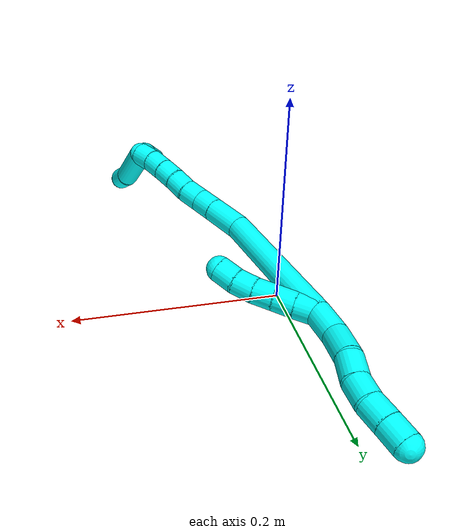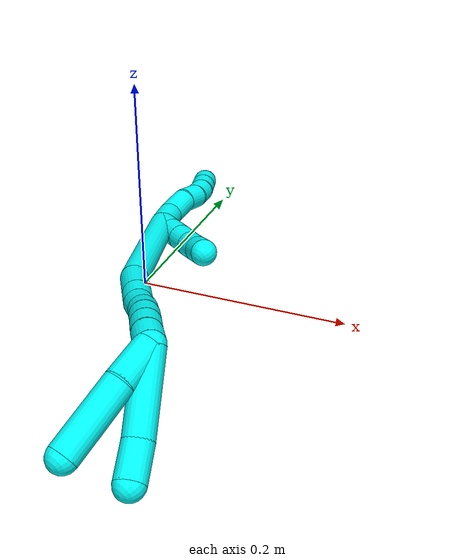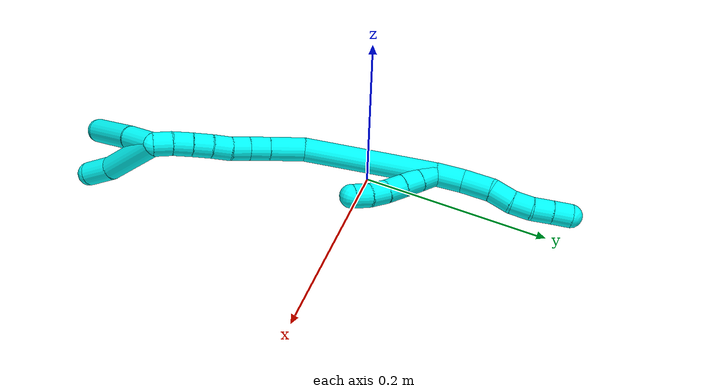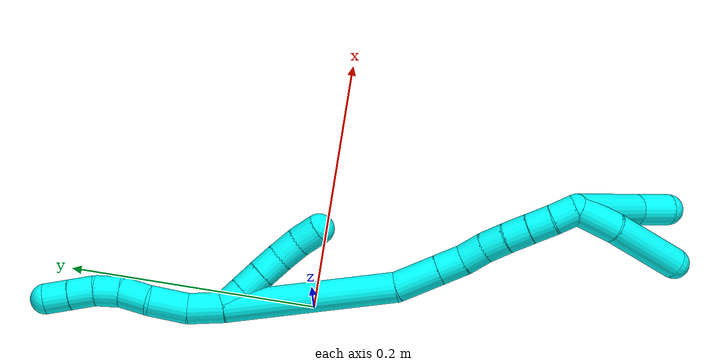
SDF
<sdf version="1.7">
 <world name="default">
  <model name="3">
   <static>0</static>
   <link name="3">
    <collision name="collision-cylinder-e_1_2_8">
     <pose>-0.00577 0.00658 -0.01234 -2.6517 -0.391288 1.34069</pose>
     <geometry><cylinder><radius>0.0125</radius><length>0.030256</length></cylinder></geometry>
     <surface>
      <friction><ode><mu>1.16</mu><mu2>1.16</mu2><slip1>0</slip1><slip2>0</slip2></ode></friction>
      <contact><ode><kp>1e+06</kp><kd>1</kd><max_vel>0</max_vel><min_depth>0.001</min_depth></ode></contact>
     </surface>
    </collision>
    <visual name="visual-cylinder-e_1_2_8">
     <pose>-0.00577 0.00658 -0.01234 -2.6517 -0.391288 1.34069</pose>
     <geometry><cylinder><radius>0.0125</radius><length>0.030256</length></cylinder></geometry>
     <material><ambient>0.003922 1 0.996078 1</ambient></material>
    </visual>
    <collision name="collision-cylinder-e_2_8_9">
     <pose>-0.014869 0.017003 -0.040044 -2.8965 -0.207248 1.40246</pose>
     <geometry><cylinder><radius>0.0125</radius><length>0.032368</length></cylinder></geometry>
     <surface>
      <friction><ode><mu>1.16</mu><mu2>1.16</mu2><slip1>0</slip1><slip2>0</slip2></ode></friction>
      <contact><ode><kp>1e+06</kp><kd>1</kd><max_vel>0</max_vel><min_depth>0.001</min_depth></ode></contact>
     </surface>
    </collision>
    <visual name="visual-cylinder-e_2_8_9">
     <pose>-0.014869 0.017003 -0.040044 -2.8965 -0.207248 1.40246</pose>
     <geometry><cylinder><radius>0.0125</radius><length>0.032368</length></cylinder></geometry>
     <material><ambient>0.003922 1 0.996078 1</ambient></material>
    </visual>
    <collision name="collision-cylinder-e_3_9_10">
     <pose>-0.023309 0.022201 -0.066171 -3.01639 -0.440227 2.59528</pose>
     <geometry><cylinder><radius>0.0125</radius><length>0.023981</length></cylinder></geometry>
     <surface>
      <friction><ode><mu>1.16</mu><mu2>1.16</mu2><slip1>0</slip1><slip2>0</slip2></ode></friction>
      <contact><ode><kp>1e+06</kp><kd>1</kd><max_vel>0</max_vel><min_depth>0.001</min_depth></ode></contact>
     </surface>
    </collision>
    <visual name="visual-cylinder-e_3_9_10">
     <pose>-0.023309 0.022201 -0.066171 -3.01639 -0.440227 2.59528</pose>
     <geometry><cylinder><radius>0.0125</radius><length>0.023981</length></cylinder></geometry>
     <material><ambient>0.003922 1 0.996078 1</ambient></material>
    </visual>
    <collision name="collision-cylinder-e_4_10_11">
     <pose>-0.032658 0.0273 -0.086019 -2.75066 -0.407276 1.61286</pose>
     <geometry><cylinder><radius>0.0125</radius><length>0.021406</length></cylinder></geometry>
     <surface>
      <friction><ode><mu>1.16</mu><mu2>1.16</mu2><slip1>0</slip1><slip2>0</slip2></ode></friction>
      <contact><ode><kp>1e+06</kp><kd>1</kd><max_vel>0</max_vel><min_depth>0.001</min_depth></ode></contact>
     </surface>
    </collision>
    <visual name="visual-cylinder-e_4_10_11">
     <pose>-0.032658 0.0273 -0.086019 -2.75066 -0.407276 1.61286</pose>
     <geometry><cylinder><radius>0.0125</radius><length>0.021406</length></cylinder></geometry>
     <material><ambient>0.003922 1 0.996078 1</ambient></material>
    </visual>
    <collision name="collision-cylinder-e_5_11_12">
     <pose>-0.041224 0.036733 -0.103018 -2.51837 -0.417831 1.16423</pose>
     <geometry><cylinder><radius>0.0125</radius><length>0.021325</length></cylinder></geometry>
     <surface>
      <friction><ode><mu>1.16</mu><mu2>1.16</mu2><slip1>0</slip1><slip2>0</slip2></ode></friction>
      <contact><ode><kp>1e+06</kp><kd>1</kd><max_vel>0</max_vel><min_depth>0.001</min_depth></ode></contact>
     </surface>
    </collision>
    <visual name="visual-cylinder-e_5_11_12">
     <pose>-0.041224 0.036733 -0.103018 -2.51837 -0.417831 1.16423</pose>
     <geometry><cylinder><radius>0.0125</radius><length>0.021325</length></cylinder></geometry>
     <material><ambient>0.003922 1 0.996078 1</ambient></material>
    </visual>
    <collision name="collision-cylinder-e_6_12_6">
     <pose>-0.049975 0.047883 -0.118503 -2.5166 -0.442514 1.21638</pose>
     <geometry><cylinder><radius>0.0125</radius><length>0.020664</length></cylinder></geometry>
     <surface>
      <friction><ode><mu>1.16</mu><mu2>1.16</mu2><slip1>0</slip1><slip2>0</slip2></ode></friction>
      <contact><ode><kp>1e+06</kp><kd>1</kd><max_vel>0</max_vel><min_depth>0.001</min_depth></ode></contact>
     </surface>
    </collision>
    <visual name="visual-cylinder-e_6_12_6">
     <pose>-0.049975 0.047883 -0.118503 -2.5166 -0.442514 1.21638</pose>
     <geometry><cylinder><radius>0.0125</radius><length>0.020664</length></cylinder></geometry>
     <material><ambient>0.003922 1 0.996078 1</ambient></material>
    </visual>
    <collision name="collision-cylinder-e_1_2_13">
     <pose>0.002401 -0.009141 0.003267 1.22753 0.242462 0.171246</pose>
     <geometry><cylinder><radius>0.0125</radius><length>0.02</length></cylinder></geometry>
     <surface>
      <friction><ode><mu>1.16</mu><mu2>1.16</mu2><slip1>0</slip1><slip2>0</slip2></ode></friction>
      <contact><ode><kp>1e+06</kp><kd>1</kd><max_vel>0</max_vel><min_depth>0.001</min_depth></ode></contact>
     </surface>
    </collision>
    <visual name="visual-cylinder-e_1_2_13">
     <pose>0.002401 -0.009141 0.003267 1.22753 0.242462 0.171246</pose>
     <geometry><cylinder><radius>0.0125</radius><length>0.02</length></cylinder></geometry>
     <material><ambient>0.003922 1 0.996078 1</ambient></material>
    </visual>
    <collision name="collision-cylinder-e_2_13_14">
     <pose>0.007507 -0.027338 0.009801 1.22456 0.273899 0.192975</pose>
     <geometry><cylinder><radius>0.0125</radius><length>0.02</length></cylinder></geometry>
     <surface>
      <friction><ode><mu>1.16</mu><mu2>1.16</mu2><slip1>0</slip1><slip2>0</slip2></ode></friction>
      <contact><ode><kp>1e+06</kp><kd>1</kd><max_vel>0</max_vel><min_depth>0.001</min_depth></ode></contact>
     </surface>
    </collision>
    <visual name="visual-cylinder-e_2_13_14">
     <pose>0.007507 -0.027338 0.009801 1.22456 0.273899 0.192975</pose>
     <geometry><cylinder><radius>0.0125</radius><length>0.02</length></cylinder></geometry>
     <material><ambient>0.003922 1 0.996078 1</ambient></material>
    </visual>
    <collision name="collision-cylinder-e_3_14_15">
     <pose>0.012783 -0.045424 0.01651 1.20666 0.260108 0.179756</pose>
     <geometry><cylinder><radius>0.0125</radius><length>0.02</length></cylinder></geometry>
     <surface>
      <friction><ode><mu>1.16</mu><mu2>1.16</mu2><slip1>0</slip1><slip2>0</slip2></ode></friction>
      <contact><ode><kp>1e+06</kp><kd>1</kd><max_vel>0</max_vel><min_depth>0.001</min_depth></ode></contact>
     </surface>
    </collision>
    <visual name="visual-cylinder-e_3_14_15">
     <pose>0.012783 -0.045424 0.01651 1.20666 0.260108 0.179756</pose>
     <geometry><cylinder><radius>0.0125</radius><length>0.02</length></cylinder></geometry>
     <material><ambient>0.003922 1 0.996078 1</ambient></material>
    </visual>
    <collision name="collision-cylinder-e_4_15_16">
     <pose>0.019046 -0.063056 0.023471 1.18242 0.377971 0.255402</pose>
     <geometry><cylinder><radius>0.0125</radius><length>0.02</length></cylinder></geometry>
     <surface>
      <friction><ode><mu>1.16</mu><mu2>1.16</mu2><slip1>0</slip1><slip2>0</slip2></ode></friction>
      <contact><ode><kp>1e+06</kp><kd>1</kd><max_vel>0</max_vel><min_depth>0.001</min_depth></ode></contact>
     </surface>
    </collision>
    <visual name="visual-cylinder-e_4_15_16">
     <pose>0.019046 -0.063056 0.023471 1.18242 0.377971 0.255402</pose>
     <geometry><cylinder><radius>0.0125</radius><length>0.02</length></cylinder></geometry>
     <material><ambient>0.003922 1 0.996078 1</ambient></material>
    </visual>
    <collision name="collision-cylinder-e_5_16_5">
     <pose>0.027634 -0.079342 0.03111 1.07866 0.511913 0.310735</pose>
     <geometry><cylinder><radius>0.0125</radius><length>0.02</length></cylinder></geometry>
     <surface>
      <friction><ode><mu>1.16</mu><mu2>1.16</mu2><slip1>0</slip1><slip2>0</slip2></ode></friction>
      <contact><ode><kp>1e+06</kp><kd>1</kd><max_vel>0</max_vel><min_depth>0.001</min_depth></ode></contact>
     </surface>
    </collision>
    <visual name="visual-cylinder-e_5_16_5">
     <pose>0.027634 -0.079342 0.03111 1.07866 0.511913 0.310735</pose>
     <geometry><cylinder><radius>0.0125</radius><length>0.02</length></cylinder></geometry>
     <material><ambient>0.003922 1 0.996078 1</ambient></material>
    </visual>
    <collision name="collision-cylinder-e_1_2_17">
     <pose>0.026486 -0.035378 0.054637 0.57462 0.386453 0.115505</pose>
     <geometry><cylinder><radius>0.0125</radius><length>0.140545</length></cylinder></geometry>
     <surface>
      <friction><ode><mu>1.16</mu><mu2>1.16</mu2><slip1>0</slip1><slip2>0</slip2></ode></friction>
      <contact><ode><kp>1e+06</kp><kd>1</kd><max_vel>0</max_vel><min_depth>0.001</min_depth></ode></contact>
     </surface>
    </collision>
    <visual name="visual-cylinder-e_1_2_17">
     <pose>0.026486 -0.035378 0.054637 0.57462 0.386453 0.115505</pose>
     <geometry><cylinder><radius>0.0125</radius><length>0.140545</length></cylinder></geometry>
     <material><ambient>0.003922 1 0.996078 1</ambient></material>
    </visual>
    <collision name="collision-cylinder-e_2_17_18">
     <pose>0.060305 -0.083713 0.12031 0.865286 0.406796 0.189929</pose>
     <geometry><cylinder><radius>0.0125</radius><length>0.037067</length></cylinder></geometry>
     <surface>
      <friction><ode><mu>1.16</mu><mu2>1.16</mu2><slip1>0</slip1><slip2>0</slip2></ode></friction>
      <contact><ode><kp>1e+06</kp><kd>1</kd><max_vel>0</max_vel><min_depth>0.001</min_depth></ode></contact>
     </surface>
    </collision>
    <visual name="visual-cylinder-e_2_17_18">
     <pose>0.060305 -0.083713 0.12031 0.865286 0.406796 0.189929</pose>
     <geometry><cylinder><radius>0.0125</radius><length>0.037067</length></cylinder></geometry>
     <material><ambient>0.003922 1 0.996078 1</ambient></material>
    </visual>
    <collision name="collision-cylinder-e_3_18_19">
     <pose>0.071816 -0.104206 0.137763 0.865486 0.3994 0.186451</pose>
     <geometry><cylinder><radius>0.0125</radius><length>0.021484</length></cylinder></geometry>
     <surface>
      <friction><ode><mu>1.16</mu><mu2>1.16</mu2><slip1>0</slip1><slip2>0</slip2></ode></friction>
      <contact><ode><kp>1e+06</kp><kd>1</kd><max_vel>0</max_vel><min_depth>0.001</min_depth></ode></contact>
     </surface>
    </collision>
    <visual name="visual-cylinder-e_3_18_19">
     <pose>0.071816 -0.104206 0.137763 0.865486 0.3994 0.186451</pose>
     <geometry><cylinder><radius>0.0125</radius><length>0.021484</length></cylinder></geometry>
     <material><ambient>0.003922 1 0.996078 1</ambient></material>
    </visual>
    <collision name="collision-cylinder-e_4_19_20">
     <pose>0.080709 -0.119294 0.148793 1.02233 0.489555 0.278395</pose>
     <geometry><cylinder><radius>0.0125</radius><length>0.020057</length></cylinder></geometry>
     <surface>
      <friction><ode><mu>1.16</mu><mu2>1.16</mu2><slip1>0</slip1><slip2>0</slip2></ode></friction>
      <contact><ode><kp>1e+06</kp><kd>1</kd><max_vel>0</max_vel><min_depth>0.001</min_depth></ode></contact>
     </surface>
    </collision>
    <visual name="visual-cylinder-e_4_19_20">
     <pose>0.080709 -0.119294 0.148793 1.02233 0.489555 0.278395</pose>
     <geometry><cylinder><radius>0.0125</radius><length>0.020057</length></cylinder></geometry>
     <material><ambient>0.003922 1 0.996078 1</ambient></material>
    </visual>
    <collision name="collision-cylinder-e_5_20_21">
     <pose>0.090894 -0.133477 0.158619 0.904563 0.575359 0.28557</pose>
     <geometry><cylinder><radius>0.0125</radius><length>0.020104</length></cylinder></geometry>
     <surface>
      <friction><ode><mu>1.16</mu><mu2>1.16</mu2><slip1>0</slip1><slip2>0</slip2></ode></friction>
      <contact><ode><kp>1e+06</kp><kd>1</kd><max_vel>0</max_vel><min_depth>0.001</min_depth></ode></contact>
     </surface>
    </collision>
    <visual name="visual-cylinder-e_5_20_21">
     <pose>0.090894 -0.133477 0.158619 0.904563 0.575359 0.28557</pose>
     <geometry><cylinder><radius>0.0125</radius><length>0.020104</length></cylinder></geometry>
     <material><ambient>0.003922 1 0.996078 1</ambient></material>
    </visual>
    <collision name="collision-cylinder-e_6_21_22">
     <pose>0.101181 -0.146903 0.169625 0.864856 0.494678 0.232051</pose>
     <geometry><cylinder><radius>0.0125</radius><length>0.020294</length></cylinder></geometry>
     <surface>
      <friction><ode><mu>1.16</mu><mu2>1.16</mu2><slip1>0</slip1><slip2>0</slip2></ode></friction>
      <contact><ode><kp>1e+06</kp><kd>1</kd><max_vel>0</max_vel><min_depth>0.001</min_depth></ode></contact>
     </surface>
    </collision>
    <visual name="visual-cylinder-e_6_21_22">
     <pose>0.101181 -0.146903 0.169625 0.864856 0.494678 0.232051</pose>
     <geometry><cylinder><radius>0.0125</radius><length>0.020294</length></cylinder></geometry>
     <material><ambient>0.003922 1 0.996078 1</ambient></material>
    </visual>
    <collision name="collision-cylinder-e_7_22_23">
     <pose>0.110415 -0.160541 0.18142 0.850783 0.451829 0.207511</pose>
     <geometry><cylinder><radius>0.0125</radius><length>0.020232</length></cylinder></geometry>
     <surface>
      <friction><ode><mu>1.16</mu><mu2>1.16</mu2><slip1>0</slip1><slip2>0</slip2></ode></friction>
      <contact><ode><kp>1e+06</kp><kd>1</kd><max_vel>0</max_vel><min_depth>0.001</min_depth></ode></contact>
     </surface>
    </collision>
    <visual name="visual-cylinder-e_7_22_23">
     <pose>0.110415 -0.160541 0.18142 0.850783 0.451829 0.207511</pose>
     <geometry><cylinder><radius>0.0125</radius><length>0.020232</length></cylinder></geometry>
     <material><ambient>0.003922 1 0.996078 1</ambient></material>
    </visual>
    <collision name="collision-cylinder-e_8_23_1">
     <pose>0.11828 -0.174831 0.193321 0.900867 0.348158 0.169679</pose>
     <geometry><cylinder><radius>0.0125</radius><length>0.020216</length></cylinder></geometry>
     <surface>
      <friction><ode><mu>1.16</mu><mu2>1.16</mu2><slip1>0</slip1><slip2>0</slip2></ode></friction>
      <contact><ode><kp>1e+06</kp><kd>1</kd><max_vel>0</max_vel><min_depth>0.001</min_depth></ode></contact>
     </surface>
    </collision>
    <visual name="visual-cylinder-e_8_23_1">
     <pose>0.11828 -0.174831 0.193321 0.900867 0.348158 0.169679</pose>
     <geometry><cylinder><radius>0.0125</radius><length>0.020216</length></cylinder></geometry>
     <material><ambient>0.003922 1 0.996078 1</ambient></material>
    </visual>
    <collision name="collision-cylinder-e_1_1_24">
     <pose>0.119696 -0.183178 0.217137 0.050146 -0.112852 -0.002833</pose>
     <geometry><cylinder><radius>0.0125</radius><length>0.036107</length></cylinder></geometry>
     <surface>
      <friction><ode><mu>1.16</mu><mu2>1.16</mu2><slip1>0</slip1><slip2>0</slip2></ode></friction>
      <contact><ode><kp>1e+06</kp><kd>1</kd><max_vel>0</max_vel><min_depth>0.001</min_depth></ode></contact>
     </surface>
    </collision>
    <visual name="visual-cylinder-e_1_1_24">
     <pose>0.119696 -0.183178 0.217137 0.050146 -0.112852 -0.002833</pose>
     <geometry><cylinder><radius>0.0125</radius><length>0.036107</length></cylinder></geometry>
     <material><ambient>0.003922 1 0.996078 1</ambient></material>
    </visual>
    <collision name="collision-cylinder-e_2_24_4">
     <pose>0.109934 -0.184234 0.26605 0.005044 -0.244351 -0.000619</pose>
     <geometry><cylinder><radius>0.0125</radius><length>0.063893</length></cylinder></geometry>
     <surface>
      <friction><ode><mu>1.16</mu><mu2>1.16</mu2><slip1>0</slip1><slip2>0</slip2></ode></friction>
      <contact><ode><kp>1e+06</kp><kd>1</kd><max_vel>0</max_vel><min_depth>0.001</min_depth></ode></contact>
     </surface>
    </collision>
    <visual name="visual-cylinder-e_2_24_4">
     <pose>0.109934 -0.184234 0.26605 0.005044 -0.244351 -0.000619</pose>
     <geometry><cylinder><radius>0.0125</radius><length>0.063893</length></cylinder></geometry>
     <material><ambient>0.003922 1 0.996078 1</ambient></material>
    </visual>
    <collision name="collision-cylinder-e_1_1_25">
     <pose>0.105748 -0.196918 0.225913 0.501645 -0.483411 -0.126161</pose>
     <geometry><cylinder><radius>0.0125</radius><length>0.068765</length></cylinder></geometry>
     <surface>
      <friction><ode><mu>1.16</mu><mu2>1.16</mu2><slip1>0</slip1><slip2>0</slip2></ode></friction>
      <contact><ode><kp>1e+06</kp><kd>1</kd><max_vel>0</max_vel><min_depth>0.001</min_depth></ode></contact>
     </surface>
    </collision>
    <visual name="visual-cylinder-e_1_1_25">
     <pose>0.105748 -0.196918 0.225913 0.501645 -0.483411 -0.126161</pose>
     <geometry><cylinder><radius>0.0125</radius><length>0.068765</length></cylinder></geometry>
     <material><ambient>0.003922 1 0.996078 1</ambient></material>
    </visual>
    <collision name="collision-cylinder-e_2_25_3">
     <pose>0.085742 -0.218611 0.265945 0.486387 -0.260672 -0.06502</pose>
     <geometry><cylinder><radius>0.0125</radius><length>0.031235</length></cylinder></geometry>
     <surface>
      <friction><ode><mu>1.16</mu><mu2>1.16</mu2><slip1>0</slip1><slip2>0</slip2></ode></friction>
      <contact><ode><kp>1e+06</kp><kd>1</kd><max_vel>0</max_vel><min_depth>0.001</min_depth></ode></contact>
     </surface>
    </collision>
    <visual name="visual-cylinder-e_2_25_3">
     <pose>0.085742 -0.218611 0.265945 0.486387 -0.260672 -0.06502</pose>
     <geometry><cylinder><radius>0.0125</radius><length>0.031235</length></cylinder></geometry>
     <material><ambient>0.003922 1 0.996078 1</ambient></material>
    </visual>
    <collision name="collision-sphere-3">
     <pose>0.081717 -0.225664 0.279285 0 -0 0</pose>
     <geometry><sphere><radius>0.0125</radius></sphere></geometry>
     <surface>
      <friction><ode><mu>1.16</mu><mu2>1.16</mu2><slip1>0</slip1><slip2>0</slip2></ode></friction>
      <contact><ode><kp>1e+06</kp><kd>1</kd><max_vel>0</max_vel><min_depth>0.001</min_depth></ode></contact>
     </surface>
    </collision>
    <visual name="visual-sphere-3">
     <pose>0.081717 -0.225664 0.279285 0 -0 0</pose>
     <geometry><sphere><radius>0.0125</radius></sphere></geometry>
     <material><ambient>0.003922 1 0.996078 1</ambient></material>
    </visual>
    <collision name="collision-sphere-25">
     <pose>0.089767 -0.211557 0.252605 0 -0 0</pose>
     <geometry><sphere><radius>0.0125</radius></sphere></geometry>
     <surface>
      <friction><ode><mu>1.16</mu><mu2>1.16</mu2><slip1>0</slip1><slip2>0</slip2></ode></friction>
      <contact><ode><kp>1e+06</kp><kd>1</kd><max_vel>0</max_vel><min_depth>0.001</min_depth></ode></contact>
     </surface>
    </collision>
    <visual name="visual-sphere-25">
     <pose>0.089767 -0.211557 0.252605 0 -0 0</pose>
     <geometry><sphere><radius>0.0125</radius></sphere></geometry>
     <material><ambient>0.003922 1 0.996078 1</ambient></material>
    </visual>
    <collision name="collision-sphere-4">
     <pose>0.102205 -0.18439 0.297047 0 -0 0</pose>
     <geometry><sphere><radius>0.0125</radius></sphere></geometry>
     <surface>
      <friction><ode><mu>1.16</mu><mu2>1.16</mu2><slip1>0</slip1><slip2>0</slip2></ode></friction>
      <contact><ode><kp>1e+06</kp><kd>1</kd><max_vel>0</max_vel><min_depth>0.001</min_depth></ode></contact>
     </surface>
    </collision>
    <visual name="visual-sphere-4">
     <pose>0.102205 -0.18439 0.297047 0 -0 0</pose>
     <geometry><sphere><radius>0.0125</radius></sphere></geometry>
     <material><ambient>0.003922 1 0.996078 1</ambient></material>
    </visual>
    <collision name="collision-sphere-24">
     <pose>0.117663 -0.184078 0.235053 0 -0 0</pose>
     <geometry><sphere><radius>0.0125</radius></sphere></geometry>
     <surface>
      <friction><ode><mu>1.16</mu><mu2>1.16</mu2><slip1>0</slip1><slip2>0</slip2></ode></friction>
      <contact><ode><kp>1e+06</kp><kd>1</kd><max_vel>0</max_vel><min_depth>0.001</min_depth></ode></contact>
     </surface>
    </collision>
    <visual name="visual-sphere-24">
     <pose>0.117663 -0.184078 0.235053 0 -0 0</pose>
     <geometry><sphere><radius>0.0125</radius></sphere></geometry>
     <material><ambient>0.003922 1 0.996078 1</ambient></material>
    </visual>
    <collision name="collision-sphere-1">
     <pose>0.121729 -0.182279 0.199221 0 -0 0</pose>
     <geometry><sphere><radius>0.0125</radius></sphere></geometry>
     <surface>
      <friction><ode><mu>1.16</mu><mu2>1.16</mu2><slip1>0</slip1><slip2>0</slip2></ode></friction>
      <contact><ode><kp>1e+06</kp><kd>1</kd><max_vel>0</max_vel><min_depth>0.001</min_depth></ode></contact>
     </surface>
    </collision>
    <visual name="visual-sphere-1">
     <pose>0.121729 -0.182279 0.199221 0 -0 0</pose>
     <geometry><sphere><radius>0.0125</radius></sphere></geometry>
     <material><ambient>0.003922 1 0.996078 1</ambient></material>
    </visual>
    <collision name="collision-sphere-23">
     <pose>0.114832 -0.167383 0.187421 0 -0 0</pose>
     <geometry><sphere><radius>0.0125</radius></sphere></geometry>
     <surface>
      <friction><ode><mu>1.16</mu><mu2>1.16</mu2><slip1>0</slip1><slip2>0</slip2></ode></friction>
      <contact><ode><kp>1e+06</kp><kd>1</kd><max_vel>0</max_vel><min_depth>0.001</min_depth></ode></contact>
     </surface>
    </collision>
    <visual name="visual-sphere-23">
     <pose>0.114832 -0.167383 0.187421 0 -0 0</pose>
     <geometry><sphere><radius>0.0125</radius></sphere></geometry>
     <material><ambient>0.003922 1 0.996078 1</ambient></material>
    </visual>
    <collision name="collision-sphere-22">
     <pose>0.105998 -0.153699 0.175419 0 -0 0</pose>
     <geometry><sphere><radius>0.0125</radius></sphere></geometry>
     <surface>
      <friction><ode><mu>1.16</mu><mu2>1.16</mu2><slip1>0</slip1><slip2>0</slip2></ode></friction>
      <contact><ode><kp>1e+06</kp><kd>1</kd><max_vel>0</max_vel><min_depth>0.001</min_depth></ode></contact>
     </surface>
    </collision>
    <visual name="visual-sphere-22">
     <pose>0.105998 -0.153699 0.175419 0 -0 0</pose>
     <geometry><sphere><radius>0.0125</radius></sphere></geometry>
     <material><ambient>0.003922 1 0.996078 1</ambient></material>
    </visual>
    <collision name="collision-sphere-21">
     <pose>0.096364 -0.140107 0.163832 0 -0 0</pose>
     <geometry><sphere><radius>0.0125</radius></sphere></geometry>
     <surface>
      <friction><ode><mu>1.16</mu><mu2>1.16</mu2><slip1>0</slip1><slip2>0</slip2></ode></friction>
      <contact><ode><kp>1e+06</kp><kd>1</kd><max_vel>0</max_vel><min_depth>0.001</min_depth></ode></contact>
     </surface>
    </collision>
    <visual name="visual-sphere-21">
     <pose>0.096364 -0.140107 0.163832 0 -0 0</pose>
     <geometry><sphere><radius>0.0125</radius></sphere></geometry>
     <material><ambient>0.003922 1 0.996078 1</ambient></material>
    </visual>
    <collision name="collision-sphere-12">
     <pose>-0.045551 0.04242 -0.110932 0 -0 0</pose>
     <geometry><sphere><radius>0.0125</radius></sphere></geometry>
     <surface>
      <friction><ode><mu>1.16</mu><mu2>1.16</mu2><slip1>0</slip1><slip2>0</slip2></ode></friction>
      <contact><ode><kp>1e+06</kp><kd>1</kd><max_vel>0</max_vel><min_depth>0.001</min_depth></ode></contact>
     </surface>
    </collision>
    <visual name="visual-sphere-12">
     <pose>-0.045551 0.04242 -0.110932 0 -0 0</pose>
     <geometry><sphere><radius>0.0125</radius></sphere></geometry>
     <material><ambient>0.003922 1 0.996078 1</ambient></material>
    </visual>
    <collision name="collision-sphere-11">
     <pose>-0.036898 0.031045 -0.095105 0 -0 0</pose>
     <geometry><sphere><radius>0.0125</radius></sphere></geometry>
     <surface>
      <friction><ode><mu>1.16</mu><mu2>1.16</mu2><slip1>0</slip1><slip2>0</slip2></ode></friction>
      <contact><ode><kp>1e+06</kp><kd>1</kd><max_vel>0</max_vel><min_depth>0.001</min_depth></ode></contact>
     </surface>
    </collision>
    <visual name="visual-sphere-11">
     <pose>-0.036898 0.031045 -0.095105 0 -0 0</pose>
     <geometry><sphere><radius>0.0125</radius></sphere></geometry>
     <material><ambient>0.003922 1 0.996078 1</ambient></material>
    </visual>
    <collision name="collision-sphere-10">
     <pose>-0.028419 0.023555 -0.076934 0 -0 0</pose>
     <geometry><sphere><radius>0.0125</radius></sphere></geometry>
     <surface>
      <friction><ode><mu>1.16</mu><mu2>1.16</mu2><slip1>0</slip1><slip2>0</slip2></ode></friction>
      <contact><ode><kp>1e+06</kp><kd>1</kd><max_vel>0</max_vel><min_depth>0.001</min_depth></ode></contact>
     </surface>
    </collision>
    <visual name="visual-sphere-10">
     <pose>-0.028419 0.023555 -0.076934 0 -0 0</pose>
     <geometry><sphere><radius>0.0125</radius></sphere></geometry>
     <material><ambient>0.003922 1 0.996078 1</ambient></material>
    </visual>
    <collision name="collision-sphere-9">
     <pose>-0.018199 0.020846 -0.055408 0 -0 0</pose>
     <geometry><sphere><radius>0.0125</radius></sphere></geometry>
     <surface>
      <friction><ode><mu>1.16</mu><mu2>1.16</mu2><slip1>0</slip1><slip2>0</slip2></ode></friction>
      <contact><ode><kp>1e+06</kp><kd>1</kd><max_vel>0</max_vel><min_depth>0.001</min_depth></ode></contact>
     </surface>
    </collision>
    <visual name="visual-sphere-9">
     <pose>-0.018199 0.020846 -0.055408 0 -0 0</pose>
     <geometry><sphere><radius>0.0125</radius></sphere></geometry>
     <material><ambient>0.003922 1 0.996078 1</ambient></material>
    </visual>
    <collision name="collision-sphere-2">
     <geometry><sphere><radius>0.0125</radius></sphere></geometry>
     <surface>
      <friction><ode><mu>1.16</mu><mu2>1.16</mu2><slip1>0</slip1><slip2>0</slip2></ode></friction>
      <contact><ode><kp>1e+06</kp><kd>1</kd><max_vel>0</max_vel><min_depth>0.001</min_depth></ode></contact>
     </surface>
    </collision>
    <visual name="visual-sphere-2">
     <geometry><sphere><radius>0.0125</radius></sphere></geometry>
     <material><ambient>0.003922 1 0.996078 1</ambient></material>
    </visual>
    <collision name="collision-sphere-19">
     <pose>0.075993 -0.111742 0.144178 0 -0 0</pose>
     <geometry><sphere><radius>0.0125</radius></sphere></geometry>
     <surface>
      <friction><ode><mu>1.16</mu><mu2>1.16</mu2><slip1>0</slip1><slip2>0</slip2></ode></friction>
      <contact><ode><kp>1e+06</kp><kd>1</kd><max_vel>0</max_vel><min_depth>0.001</min_depth></ode></contact>
     </surface>
    </collision>
    <visual name="visual-sphere-19">
     <pose>0.075993 -0.111742 0.144178 0 -0 0</pose>
     <geometry><sphere><radius>0.0125</radius></sphere></geometry>
     <material><ambient>0.003922 1 0.996078 1</ambient></material>
    </visual>
    <collision name="collision-sphere-8">
     <pose>-0.011539 0.01316 -0.02468 0 -0 0</pose>
     <geometry><sphere><radius>0.0125</radius></sphere></geometry>
     <surface>
      <friction><ode><mu>1.16</mu><mu2>1.16</mu2><slip1>0</slip1><slip2>0</slip2></ode></friction>
      <contact><ode><kp>1e+06</kp><kd>1</kd><max_vel>0</max_vel><min_depth>0.001</min_depth></ode></contact>
     </surface>
    </collision>
    <visual name="visual-sphere-8">
     <pose>-0.011539 0.01316 -0.02468 0 -0 0</pose>
     <geometry><sphere><radius>0.0125</radius></sphere></geometry>
     <material><ambient>0.003922 1 0.996078 1</ambient></material>
    </visual>
    <collision name="collision-sphere-6">
     <pose>-0.0544 0.053346 -0.126075 0 -0 0</pose>
     <geometry><sphere><radius>0.0125</radius></sphere></geometry>
     <surface>
      <friction><ode><mu>1.16</mu><mu2>1.16</mu2><slip1>0</slip1><slip2>0</slip2></ode></friction>
      <contact><ode><kp>1e+06</kp><kd>1</kd><max_vel>0</max_vel><min_depth>0.001</min_depth></ode></contact>
     </surface>
    </collision>
    <visual name="visual-sphere-6">
     <pose>-0.0544 0.053346 -0.126075 0 -0 0</pose>
     <geometry><sphere><radius>0.0125</radius></sphere></geometry>
     <material><ambient>0.003922 1 0.996078 1</ambient></material>
    </visual>
    <collision name="collision-sphere-13">
     <pose>0.004802 -0.018282 0.006534 0 -0 0</pose>
     <geometry><sphere><radius>0.0125</radius></sphere></geometry>
     <surface>
      <friction><ode><mu>1.16</mu><mu2>1.16</mu2><slip1>0</slip1><slip2>0</slip2></ode></friction>
      <contact><ode><kp>1e+06</kp><kd>1</kd><max_vel>0</max_vel><min_depth>0.001</min_depth></ode></contact>
     </surface>
    </collision>
    <visual name="visual-sphere-13">
     <pose>0.004802 -0.018282 0.006534 0 -0 0</pose>
     <geometry><sphere><radius>0.0125</radius></sphere></geometry>
     <material><ambient>0.003922 1 0.996078 1</ambient></material>
    </visual>
    <collision name="collision-sphere-14">
     <pose>0.010212 -0.036394 0.013069 0 -0 0</pose>
     <geometry><sphere><radius>0.0125</radius></sphere></geometry>
     <surface>
      <friction><ode><mu>1.16</mu><mu2>1.16</mu2><slip1>0</slip1><slip2>0</slip2></ode></friction>
      <contact><ode><kp>1e+06</kp><kd>1</kd><max_vel>0</max_vel><min_depth>0.001</min_depth></ode></contact>
     </surface>
    </collision>
    <visual name="visual-sphere-14">
     <pose>0.010212 -0.036394 0.013069 0 -0 0</pose>
     <geometry><sphere><radius>0.0125</radius></sphere></geometry>
     <material><ambient>0.003922 1 0.996078 1</ambient></material>
    </visual>
    <collision name="collision-sphere-15">
     <pose>0.015355 -0.054454 0.019952 0 -0 0</pose>
     <geometry><sphere><radius>0.0125</radius></sphere></geometry>
     <surface>
      <friction><ode><mu>1.16</mu><mu2>1.16</mu2><slip1>0</slip1><slip2>0</slip2></ode></friction>
      <contact><ode><kp>1e+06</kp><kd>1</kd><max_vel>0</max_vel><min_depth>0.001</min_depth></ode></contact>
     </surface>
    </collision>
    <visual name="visual-sphere-15">
     <pose>0.015355 -0.054454 0.019952 0 -0 0</pose>
     <geometry><sphere><radius>0.0125</radius></sphere></geometry>
     <material><ambient>0.003922 1 0.996078 1</ambient></material>
    </visual>
    <collision name="collision-sphere-16">
     <pose>0.022736 -0.071658 0.026991 0 -0 0</pose>
     <geometry><sphere><radius>0.0125</radius></sphere></geometry>
     <surface>
      <friction><ode><mu>1.16</mu><mu2>1.16</mu2><slip1>0</slip1><slip2>0</slip2></ode></friction>
      <contact><ode><kp>1e+06</kp><kd>1</kd><max_vel>0</max_vel><min_depth>0.001</min_depth></ode></contact>
     </surface>
    </collision>
    <visual name="visual-sphere-16">
     <pose>0.022736 -0.071658 0.026991 0 -0 0</pose>
     <geometry><sphere><radius>0.0125</radius></sphere></geometry>
     <material><ambient>0.003922 1 0.996078 1</ambient></material>
    </visual>
    <collision name="collision-sphere-5">
     <pose>0.032533 -0.087025 0.03523 0 -0 0</pose>
     <geometry><sphere><radius>0.0125</radius></sphere></geometry>
     <surface>
      <friction><ode><mu>1.16</mu><mu2>1.16</mu2><slip1>0</slip1><slip2>0</slip2></ode></friction>
      <contact><ode><kp>1e+06</kp><kd>1</kd><max_vel>0</max_vel><min_depth>0.001</min_depth></ode></contact>
     </surface>
    </collision>
    <visual name="visual-sphere-5">
     <pose>0.032533 -0.087025 0.03523 0 -0 0</pose>
     <geometry><sphere><radius>0.0125</radius></sphere></geometry>
     <material><ambient>0.003922 1 0.996078 1</ambient></material>
    </visual>
    <collision name="collision-sphere-17">
     <pose>0.052972 -0.070755 0.109273 0 -0 0</pose>
     <geometry><sphere><radius>0.0125</radius></sphere></geometry>
     <surface>
      <friction><ode><mu>1.16</mu><mu2>1.16</mu2><slip1>0</slip1><slip2>0</slip2></ode></friction>
      <contact><ode><kp>1e+06</kp><kd>1</kd><max_vel>0</max_vel><min_depth>0.001</min_depth></ode></contact>
     </surface>
    </collision>
    <visual name="visual-sphere-17">
     <pose>0.052972 -0.070755 0.109273 0 -0 0</pose>
     <geometry><sphere><radius>0.0125</radius></sphere></geometry>
     <material><ambient>0.003922 1 0.996078 1</ambient></material>
    </visual>
    <collision name="collision-sphere-18">
     <pose>0.067639 -0.096671 0.131347 0 -0 0</pose>
     <geometry><sphere><radius>0.0125</radius></sphere></geometry>
     <surface>
      <friction><ode><mu>1.16</mu><mu2>1.16</mu2><slip1>0</slip1><slip2>0</slip2></ode></friction>
      <contact><ode><kp>1e+06</kp><kd>1</kd><max_vel>0</max_vel><min_depth>0.001</min_depth></ode></contact>
     </surface>
    </collision>
    <visual name="visual-sphere-18">
     <pose>0.067639 -0.096671 0.131347 0 -0 0</pose>
     <geometry><sphere><radius>0.0125</radius></sphere></geometry>
     <material><ambient>0.003922 1 0.996078 1</ambient></material>
    </visual>
    <collision name="collision-sphere-20">
     <pose>0.085424 -0.126846 0.153407 0 -0 0</pose>
     <geometry><sphere><radius>0.0125</radius></sphere></geometry>
     <surface>
      <friction><ode><mu>1.16</mu><mu2>1.16</mu2><slip1>0</slip1><slip2>0</slip2></ode></friction>
      <contact><ode><kp>1e+06</kp><kd>1</kd><max_vel>0</max_vel><min_depth>0.001</min_depth></ode></contact>
     </surface>
    </collision>
    <visual name="visual-sphere-20">
     <pose>0.085424 -0.126846 0.153407 0 -0 0</pose>
     <geometry><sphere><radius>0.0125</radius></sphere></geometry>
     <material><ambient>0.003922 1 0.996078 1</ambient></material>
    </visual>
    <inertial>
     <pose>0.048644 -0.086341 0.097217 0 -0 0</pose>
     <mass>0.75</mass>
     <inertia>
      <ixx>0.000338</ixx>
      <ixy>0</ixy>
      <ixz>0</ixz>
      <iyy>0.000295</iyy>
      <iyz>0</iyz>
      <izz>9.6e-05</izz>
     </inertia>
    </inertial>
   </link>
   <pose>-0.013574 0.070783 0.028028 2.81026 -1.29855 -1.5307</pose>
  </model>
 </world>
</sdf>
